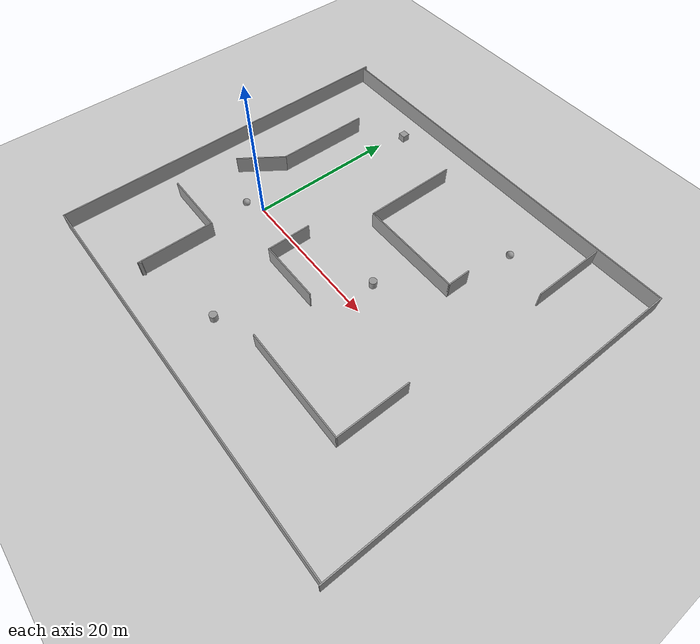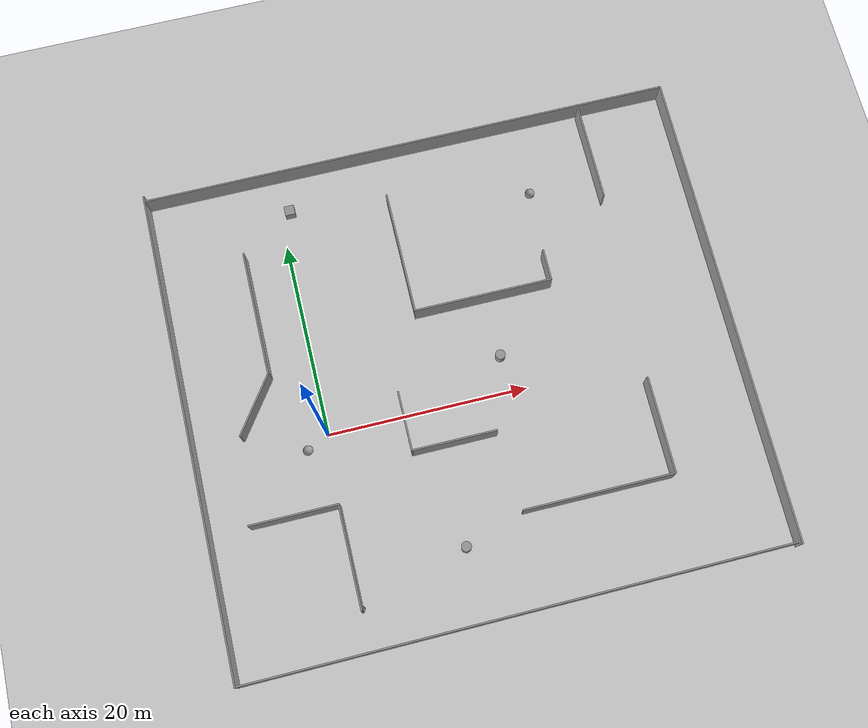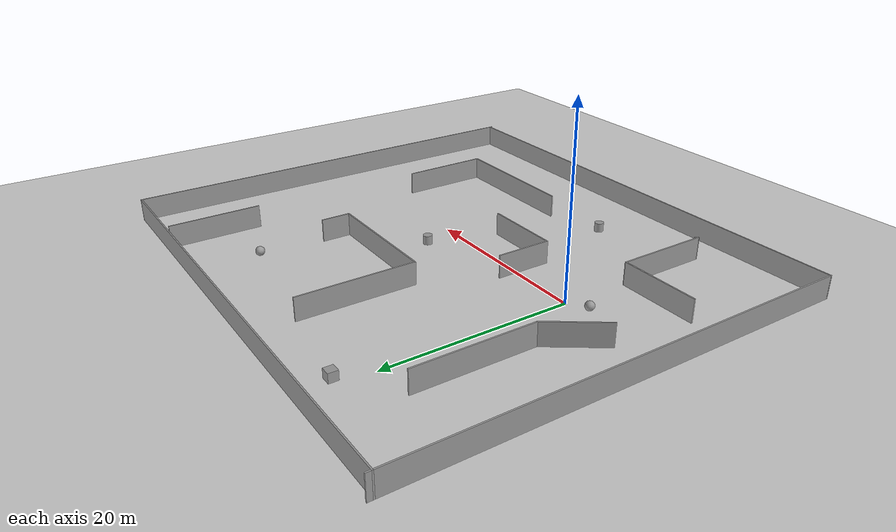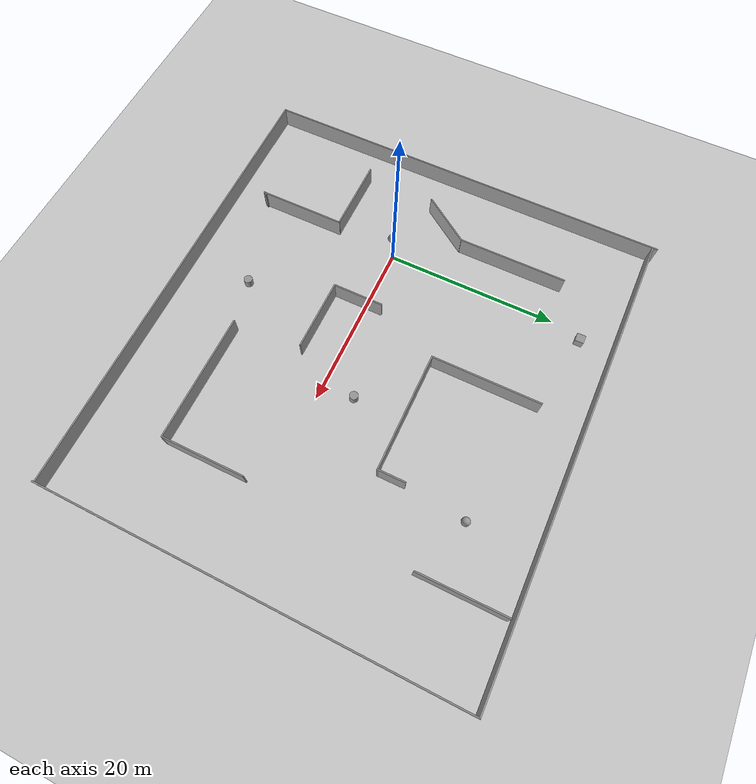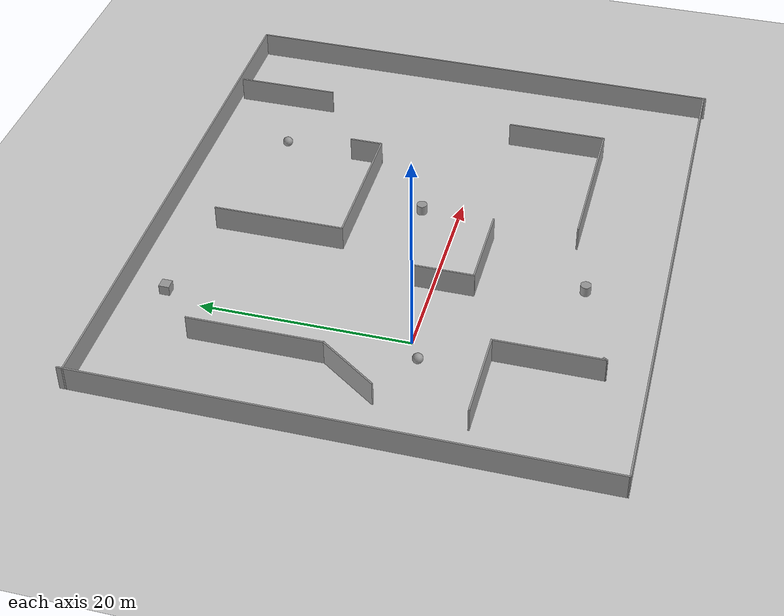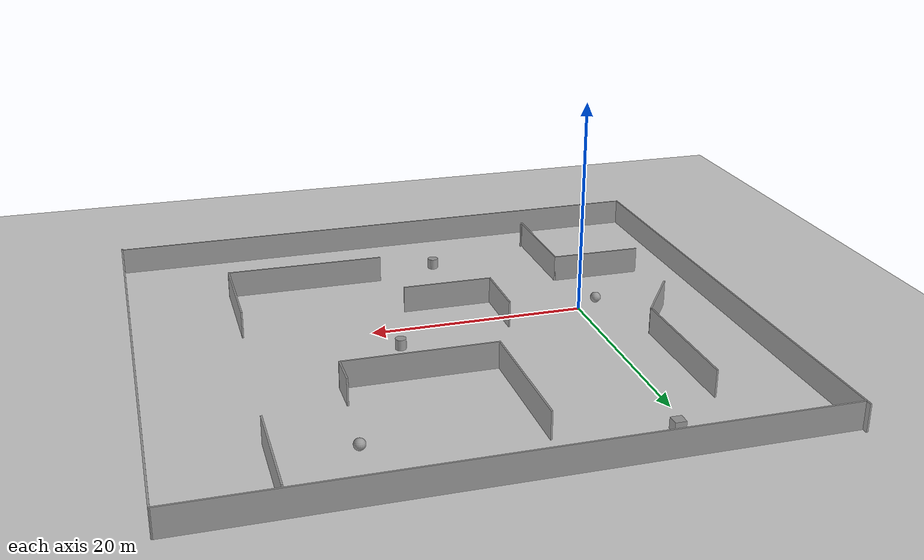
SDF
<sdf version="1.7">
 <world name="default">
  <light name="sun" type="directional">
   <pose>0 0 10 0 -0 0</pose>
   <diffuse>0.8 0.8 0.8 1</diffuse>
   <specular>0.2 0.2 0.2 1</specular>
   <attenuation>
    <range>1000</range>
    <constant>0.9</constant>
    <linear>0.01</linear>
    <quadratic>0.001</quadratic>
   </attenuation>
   <direction>-0.5 0.1 -0.9</direction>
   <spot><inner_angle>0</inner_angle><outer_angle>0</outer_angle><falloff>0</falloff></spot>
  </light>
  <model name="ground_plane">
   <static>1</static>
   <link name="link">
    <collision name="collision">
     <geometry><plane><normal>0 0 1</normal><size>100 100</size></plane></geometry>
     <surface>
      <contact><collide_bitmask>65535</collide_bitmask></contact>
      <friction><ode><mu>100</mu><mu2>50</mu2></ode></friction>
     </surface>
    </collision>
    <visual name="visual">
     <cast_shadows>0</cast_shadows>
     <geometry><plane><normal>0 0 1</normal><size>100 100</size></plane></geometry>
     <material>
      <script><uri>file://media/materials/scripts/gazebo.material</uri><name>Gazebo/Grey</name></script>
     </material>
    </visual>
   </link>
  </model>
  <gravity>0 0 -9.8</gravity>
  <magnetic_field>6e-06 2.3e-05 -4.2e-05</magnetic_field>
  <atmosphere type="adiabatic"/>
  <physics type="ode">
   <max_step_size>0.001</max_step_size>
   <real_time_factor>1</real_time_factor>
   <real_time_update_rate>1000</real_time_update_rate>
  </physics>
  <scene><ambient>0.4 0.4 0.4 1</ambient><background>0.7 0.7 0.7 1</background><shadows>1</shadows></scene>
  <spherical_coordinates>
   <surface_model>EARTH_WGS84</surface_model>
   <latitude_deg>0</latitude_deg>
   <longitude_deg>0</longitude_deg>
   <elevation>0</elevation>
   <heading_deg>0</heading_deg>
  </spherical_coordinates>
  <model name="racer">
   <pose>14.1892 3.30465 0 0 -0 0</pose>
   <link name="Wall_10">
    <collision name="Wall_10_Collision">
     <geometry><box><size>48.57 0.15 2.5</size></box></geometry>
     <pose>0 0 1.25 0 -0 0</pose>
    </collision>
    <visual name="Wall_10_Visual">
     <pose>0 0 1.25 0 -0 0</pose>
     <geometry><box><size>48.57 0.15 2.5</size></box></geometry>
     <material>
      <script><uri>file://media/materials/scripts/gazebo.material</uri><name>Gazebo/Grey</name></script>
      <ambient>1 1 1 1</ambient>
     </material>
     <meta><layer>0</layer></meta>
    </visual>
    <pose>26.9093 -0.159297 0 0 -0 1.56498</pose>
   </link>
   <link name="Wall_11">
    <collision name="Wall_11_Collision">
     <geometry><box><size>54.25 0.15 2.5</size></box></geometry>
     <pose>0 0 1.25 0 -0 0</pose>
    </collision>
    <visual name="Wall_11_Visual">
     <pose>0 0 1.25 0 -0 0</pose>
     <geometry><box><size>54.25 0.15 2.5</size></box></geometry>
     <material>
      <script><uri>file://media/materials/scripts/gazebo.material</uri><name>Gazebo/Grey</name></script>
      <ambient>1 1 1 1</ambient>
     </material>
     <meta><layer>0</layer></meta>
    </visual>
    <pose>5.5e-05 24.0503 0 0 -0 3.14159</pose>
   </link>
   <link name="Wall_13">
    <collision name="Wall_13_Collision">
     <geometry><box><size>12.75 0.15 2.5</size></box></geometry>
     <pose>0 0 1.25 0 -0 0</pose>
    </collision>
    <visual name="Wall_13_Visual">
     <pose>0 0 1.25 0 -0 0</pose>
     <geometry><box><size>12.75 0.15 2.5</size></box></geometry>
     <material>
      <script><uri>file://media/materials/scripts/gazebo.material</uri><name>Gazebo/Grey</name></script>
      <ambient>1 1 1 1</ambient>
     </material>
     <meta><layer>0</layer></meta>
    </visual>
    <pose>-18.4225 9.86302 0 0 -0 -1.5708</pose>
   </link>
   <link name="Wall_14">
    <collision name="Wall_14_Collision">
     <geometry><box><size>6.74885 0.15 2.5</size></box></geometry>
     <pose>0 0 1.25 0 -0 0</pose>
    </collision>
    <visual name="Wall_14_Visual">
     <pose>0 0 1.25 0 -0 0</pose>
     <geometry><box><size>6.74885 0.15 2.5</size></box></geometry>
     <material>
      <script><uri>file://media/materials/scripts/gazebo.material</uri><name>Gazebo/Grey</name></script>
      <ambient>1 1 1 1</ambient>
     </material>
     <meta><layer>0</layer></meta>
    </visual>
    <pose>-20.3212 0.771585 0 0 -0 -2.18395</pose>
   </link>
   <link name="Wall_16">
    <collision name="Wall_16_Collision">
     <geometry><box><size>15 0.15 2.5</size></box></geometry>
     <pose>0 0 1.25 0 -0 0</pose>
    </collision>
    <visual name="Wall_16_Visual">
     <pose>0 0 1.25 0 -0 0</pose>
     <geometry><box><size>15 0.15 2.5</size></box></geometry>
     <material>
      <script><uri>file://media/materials/scripts/gazebo.material</uri><name>Gazebo/Grey</name></script>
      <ambient>1 1 1 1</ambient>
     </material>
     <meta><layer>0</layer></meta>
    </visual>
    <pose>9.75213 -15.1941 0 0 -0 0</pose>
   </link>
   <link name="Wall_17">
    <collision name="Wall_17_Collision">
     <geometry><box><size>9.75 0.15 2.5</size></box></geometry>
     <pose>0 0 1.25 0 -0 0</pose>
    </collision>
    <visual name="Wall_17_Visual">
     <pose>0 0 1.25 0 -0 0</pose>
     <geometry><box><size>9.75 0.15 2.5</size></box></geometry>
     <material>
      <script><uri>file://media/materials/scripts/gazebo.material</uri><name>Gazebo/Grey</name></script>
      <ambient>1 1 1 1</ambient>
     </material>
     <meta><layer>0</layer></meta>
    </visual>
    <pose>17.1771 -10.3941 0 0 -0 1.5708</pose>
   </link>
   <link name="Wall_19">
    <collision name="Wall_19_Collision">
     <geometry><box><size>8.75 0.15 2.5</size></box></geometry>
     <pose>0 0 1.25 0 -0 0</pose>
    </collision>
    <visual name="Wall_19_Visual">
     <pose>0 0 1.25 0 -0 0</pose>
     <geometry><box><size>8.75 0.15 2.5</size></box></geometry>
     <material>
      <script><uri>file://media/materials/scripts/gazebo.material</uri><name>Gazebo/Grey</name></script>
      <ambient>1 1 1 1</ambient>
     </material>
     <meta><layer>0</layer></meta>
    </visual>
    <pose>-18.7749 -10.5417 0 0 -0 0</pose>
   </link>
   <link name="Wall_20">
    <collision name="Wall_20_Collision">
     <geometry><box><size>10.25 0.15 2.5</size></box></geometry>
     <pose>0 0 1.25 0 -0 0</pose>
    </collision>
    <visual name="Wall_20_Visual">
     <pose>0 0 1.25 0 -0 0</pose>
     <geometry><box><size>10.25 0.15 2.5</size></box></geometry>
     <material>
      <script><uri>file://media/materials/scripts/gazebo.material</uri><name>Gazebo/Grey</name></script>
      <ambient>1 1 1 1</ambient>
     </material>
     <meta><layer>0</layer></meta>
    </visual>
    <pose>-14.4749 -15.5917 0 0 -0 -1.5708</pose>
   </link>
   <link name="Wall_21">
    <collision name="Wall_21_Collision">
     <geometry><box><size>0.5 0.15 2.5</size></box></geometry>
     <pose>0 0 1.25 0 -0 0</pose>
    </collision>
    <visual name="Wall_21_Visual">
     <pose>0 0 1.25 0 -0 0</pose>
     <geometry><box><size>0.5 0.15 2.5</size></box></geometry>
     <material>
      <script><uri>file://media/materials/scripts/gazebo.material</uri><name>Gazebo/Grey</name></script>
      <ambient>1 1 1 1</ambient>
     </material>
     <meta><layer>0</layer></meta>
    </visual>
    <pose>-14.3874 -20.4902 0 0 -0 1.0472</pose>
   </link>
   <link name="Wall_23">
    <collision name="Wall_23_Collision">
     <geometry><box><size>12.75 0.15 2.5</size></box></geometry>
     <pose>0 0 1.25 0 -0 0</pose>
    </collision>
    <visual name="Wall_23_Visual">
     <pose>0 0 1.25 0 -0 0</pose>
     <geometry><box><size>12.75 0.15 2.5</size></box></geometry>
     <material>
      <script><uri>file://media/materials/scripts/gazebo.material</uri><name>Gazebo/Grey</name></script>
      <ambient>1 1 1 1</ambient>
     </material>
     <meta><layer>0</layer></meta>
    </visual>
    <pose>-3.16269 12.6545 0 0 -0 -1.5708</pose>
   </link>
   <link name="Wall_24">
    <collision name="Wall_24_Collision">
     <geometry><box><size>14 0.15 2.5</size></box></geometry>
     <pose>0 0 1.25 0 -0 0</pose>
    </collision>
    <visual name="Wall_24_Visual">
     <pose>0 0 1.25 0 -0 0</pose>
     <geometry><box><size>14 0.15 2.5</size></box></geometry>
     <material>
      <script><uri>file://media/materials/scripts/gazebo.material</uri><name>Gazebo/Grey</name></script>
      <ambient>1 1 1 1</ambient>
     </material>
     <meta><layer>0</layer></meta>
    </visual>
    <pose>3.76231 6.35445 0 0 -0 0</pose>
   </link>
   <link name="Wall_25">
    <collision name="Wall_25_Collision">
     <geometry><box><size>3.25 0.15 2.5</size></box></geometry>
     <pose>0 0 1.25 0 -0 0</pose>
    </collision>
    <visual name="Wall_25_Visual">
     <pose>0 0 1.25 0 -0 0</pose>
     <geometry><box><size>3.25 0.15 2.5</size></box></geometry>
     <material>
      <script><uri>file://media/materials/scripts/gazebo.material</uri><name>Gazebo/Grey</name></script>
      <ambient>1 1 1 1</ambient>
     </material>
     <meta><layer>0</layer></meta>
    </visual>
    <pose>10.6873 7.90445 0 0 -0 1.5708</pose>
   </link>
   <link name="Wall_27">
    <collision name="Wall_27_Collision">
     <geometry><box><size>6 0.15 2.5</size></box></geometry>
     <pose>0 0 1.25 0 -0 0</pose>
    </collision>
    <visual name="Wall_27_Visual">
     <pose>0 0 1.25 0 -0 0</pose>
     <geometry><box><size>6 0.15 2.5</size></box></geometry>
     <material>
      <script><uri>file://media/materials/scripts/gazebo.material</uri><name>Gazebo/Grey</name></script>
      <ambient>1 1 1 1</ambient>
     </material>
     <meta><layer>0</layer></meta>
    </visual>
    <pose>-6.60546 -4.25497 0 0 -0 -1.5708</pose>
   </link>
   <link name="Wall_28">
    <collision name="Wall_28_Collision">
     <geometry><box><size>8.5 0.15 2.5</size></box></geometry>
     <pose>0 0 1.25 0 -0 0</pose>
    </collision>
    <visual name="Wall_28_Visual">
     <pose>0 0 1.25 0 -0 0</pose>
     <geometry><box><size>8.5 0.15 2.5</size></box></geometry>
     <material>
      <script><uri>file://media/materials/scripts/gazebo.material</uri><name>Gazebo/Grey</name></script>
      <ambient>1 1 1 1</ambient>
     </material>
     <meta><layer>0</layer></meta>
    </visual>
    <pose>-2.43046 -7.17997 0 0 -0 0</pose>
   </link>
   <link name="Wall_30">
    <collision name="Wall_30_Collision">
     <geometry><box><size>10 0.15 2.5</size></box></geometry>
     <pose>0 0 1.25 0 -0 0</pose>
    </collision>
    <visual name="Wall_30_Visual">
     <pose>0 0 1.25 0 -0 0</pose>
     <geometry><box><size>10 0.15 2.5</size></box></geometry>
     <material>
      <script><uri>file://media/materials/scripts/gazebo.material</uri><name>Gazebo/Grey</name></script>
      <ambient>1 1 1 1</ambient>
     </material>
     <meta><layer>0</layer></meta>
    </visual>
    <pose>18.1453 18.6818 0 0 -0 -1.5708</pose>
   </link>
   <link name="Wall_6">
    <collision name="Wall_6_Collision">
     <geometry><box><size>49.25 0.15 2.5</size></box></geometry>
     <pose>0 0 1.25 0 -0 0</pose>
    </collision>
    <visual name="Wall_6_Visual">
     <pose>0 0 1.25 0 -0 0</pose>
     <geometry><box><size>49.25 0.15 2.5</size></box></geometry>
     <material>
      <script><uri>file://media/materials/scripts/gazebo.material</uri><name>Gazebo/Grey</name></script>
      <ambient>1 1 1 1</ambient>
     </material>
     <meta><layer>0</layer></meta>
    </visual>
    <pose>-27.0499 0.000273 0 0 -0 -1.5708</pose>
   </link>
   <link name="Wall_9">
    <collision name="Wall_9_Collision">
     <geometry><box><size>53.9699 0.15 2.5</size></box></geometry>
     <pose>0 0 1.25 0 -0 0</pose>
    </collision>
    <visual name="Wall_9_Visual">
     <pose>0 0 1.25 0 -0 0</pose>
     <geometry><box><size>53.9699 0.15 2.5</size></box></geometry>
     <material>
      <script><uri>file://media/materials/scripts/gazebo.material</uri><name>Gazebo/Grey</name></script>
      <ambient>1 1 1 1</ambient>
     </material>
     <meta><layer>0</layer></meta>
    </visual>
    <pose>-0.140714 -24.3517 0 0 -0 0.00736</pose>
   </link>
   <static>1</static>
  </model>
  <model name="unit_cylinder">
   <pose>18.2361 3.71629 0.499992 -3e-06 -4e-06 -0</pose>
   <link name="link">
    <inertial>
     <mass>1</mass>
     <inertia><ixx>0.145833</ixx><ixy>0</ixy><ixz>0</ixz><iyy>0.145833</iyy><iyz>0</iyz><izz>0.125</izz></inertia>
    </inertial>
    <collision name="collision">
     <geometry><cylinder><radius>0.5</radius><length>1</length></cylinder></geometry>
    </collision>
    <visual name="visual">
     <geometry><cylinder><radius>0.5</radius><length>1</length></cylinder></geometry>
     <material>
      <script><name>Gazebo/Grey</name><uri>file://media/materials/scripts/gazebo.material</uri></script>
     </material>
    </visual>
   </link>
  </model>
  <model name="unit_sphere">
   <pose>-2.16174 -1.11161 0.5 0 -0 0</pose>
   <link name="link">
    <inertial>
     <mass>1</mass>
     <inertia><ixx>0.1</ixx><ixy>0</ixy><ixz>0</ixz><iyy>0.1</iyy><iyz>0</iyz><izz>0.1</izz></inertia>
    </inertial>
    <collision name="collision"><geometry><sphere><radius>0.5</radius></sphere></geometry></collision>
    <visual name="visual">
     <geometry><sphere><radius>0.5</radius></sphere></geometry>
     <material>
      <script><name>Gazebo/Grey</name><uri>file://media/materials/scripts/gazebo.material</uri></script>
     </material>
    </visual>
   </link>
  </model>
  <model name="unit_box">
   <pose>1.08421 23.6233 0.499995 0 1e-05 0</pose>
   <link name="link">
    <inertial>
     <mass>1</mass>
     <inertia>
      <ixx>0.166667</ixx>
      <ixy>0</ixy>
      <ixz>0</ixz>
      <iyy>0.166667</iyy>
      <iyz>0</iyz>
      <izz>0.166667</izz>
     </inertia>
    </inertial>
    <collision name="collision"><geometry><box><size>1 1 1</size></box></geometry></collision>
    <visual name="visual">
     <geometry><box><size>1 1 1</size></box></geometry>
     <material>
      <script><name>Gazebo/Grey</name><uri>file://media/materials/scripts/gazebo.material</uri></script>
     </material>
    </visual>
   </link>
  </model>
  <model name="unit_sphere_0">
   <pose>25.4297 19.7959 0.5 0 -0 0</pose>
   <link name="link">
    <inertial>
     <mass>1</mass>
     <inertia><ixx>0.1</ixx><ixy>0</ixy><ixz>0</ixz><iyy>0.1</iyy><iyz>0</iyz><izz>0.1</izz></inertia>
    </inertial>
    <collision name="collision"><geometry><sphere><radius>0.5</radius></sphere></geometry></collision>
    <visual name="visual">
     <geometry><sphere><radius>0.5</radius></sphere></geometry>
     <material>
      <script><name>Gazebo/Grey</name><uri>file://media/materials/scripts/gazebo.material</uri></script>
     </material>
    </visual>
   </link>
  </model>
  <model name="unit_cylinder_0">
   <pose>10.5061 -13.769 0.499997 3e-06 4e-06 -0</pose>
   <link name="link">
    <inertial>
     <mass>1</mass>
     <inertia><ixx>0.145833</ixx><ixy>0</ixy><ixz>0</ixz><iyy>0.145833</iyy><iyz>0</iyz><izz>0.125</izz></inertia>
    </inertial>
    <collision name="collision">
     <geometry><cylinder><radius>0.5</radius><length>1</length></cylinder></geometry>
    </collision>
    <visual name="visual">
     <geometry><cylinder><radius>0.5</radius><length>1</length></cylinder></geometry>
     <material>
      <script><name>Gazebo/Grey</name><uri>file://media/materials/scripts/gazebo.material</uri></script>
     </material>
    </visual>
   </link>
  </model>
 </world>
</sdf>
